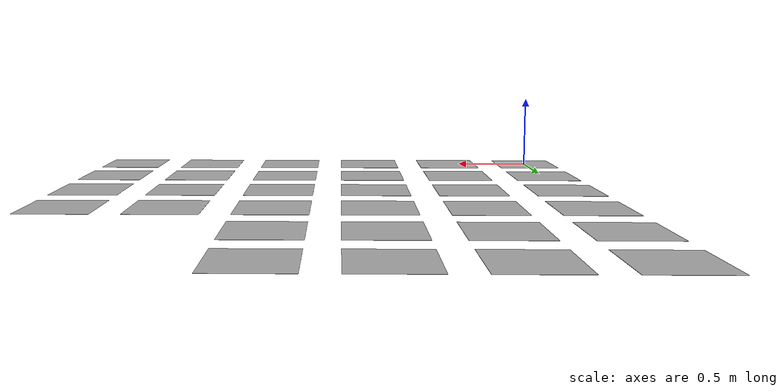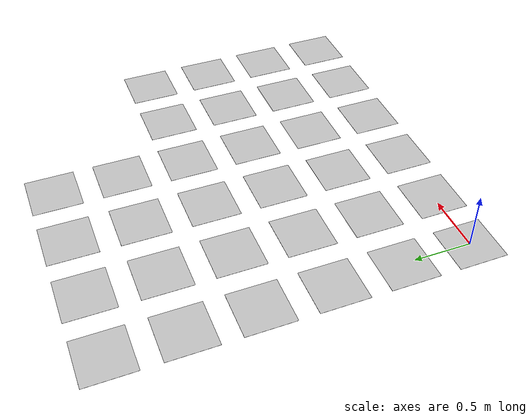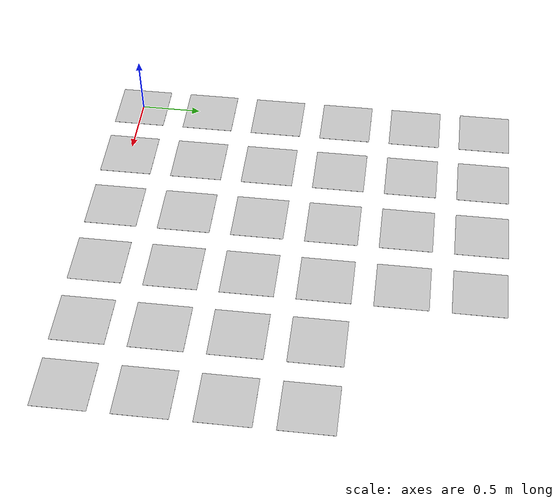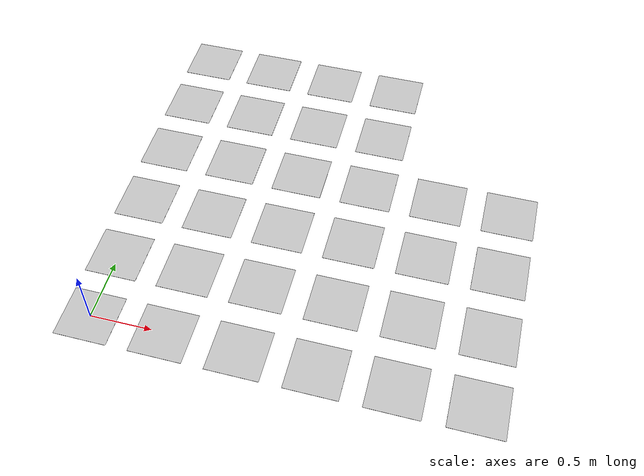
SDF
<?xml version="1.0"?>
<sdf version="1.5">
    <model name="aruco_2_32">
        <static>true</static>
        <link name="aruco_2_32_link">

<visual name="visual_marker_2_27">
    <pose>0.0 0.0 0.0 0.0 0.0 1.5707963267948966</pose>
    <cast_shadows>false</cast_shadows>
    <geometry>
        <box>
            <size>0.4266666666666667 0.4266666666666667 1e-3</size>
        </box>
    </geometry>
    <material>
        <script>
            <uri>model://aruco_ws_map_txt/materials/scripts</uri>
            <uri>model://aruco_ws_map_txt/materials/textures</uri>
            <name>aruco/marker_2_27</name>
        </script>
    </material>
</visual>

<visual name="visual_marker_2_28">
    <pose>0.6 0.0 0.0 0.0 0.0 1.5707963267948966</pose>
    <cast_shadows>false</cast_shadows>
    <geometry>
        <box>
            <size>0.4266666666666667 0.4266666666666667 1e-3</size>
        </box>
    </geometry>
    <material>
        <script>
            <uri>model://aruco_ws_map_txt/materials/scripts</uri>
            <uri>model://aruco_ws_map_txt/materials/textures</uri>
            <name>aruco/marker_2_28</name>
        </script>
    </material>
</visual>

<visual name="visual_marker_2_19">
    <pose>1.2 0.0 0.0 0.0 0.0 1.5707963267948966</pose>
    <cast_shadows>false</cast_shadows>
    <geometry>
        <box>
            <size>0.4266666666666667 0.4266666666666667 1e-3</size>
        </box>
    </geometry>
    <material>
        <script>
            <uri>model://aruco_ws_map_txt/materials/scripts</uri>
            <uri>model://aruco_ws_map_txt/materials/textures</uri>
            <name>aruco/marker_2_19</name>
        </script>
    </material>
</visual>

<visual name="visual_marker_2_20">
    <pose>1.7999999999999998 0.0 0.0 0.0 0.0 1.5707963267948966</pose>
    <cast_shadows>false</cast_shadows>
    <geometry>
        <box>
            <size>0.4266666666666667 0.4266666666666667 1e-3</size>
        </box>
    </geometry>
    <material>
        <script>
            <uri>model://aruco_ws_map_txt/materials/scripts</uri>
            <uri>model://aruco_ws_map_txt/materials/textures</uri>
            <name>aruco/marker_2_20</name>
        </script>
    </material>
</visual>

<visual name="visual_marker_2_25">
    <pose>2.4 0.0 0.0 0.0 0.0 1.5707963267948966</pose>
    <cast_shadows>false</cast_shadows>
    <geometry>
        <box>
            <size>0.4266666666666667 0.4266666666666667 1e-3</size>
        </box>
    </geometry>
    <material>
        <script>
            <uri>model://aruco_ws_map_txt/materials/scripts</uri>
            <uri>model://aruco_ws_map_txt/materials/textures</uri>
            <name>aruco/marker_2_25</name>
        </script>
    </material>
</visual>

<visual name="visual_marker_2_26">
    <pose>3.0 0.0 0.0 0.0 0.0 1.5707963267948966</pose>
    <cast_shadows>false</cast_shadows>
    <geometry>
        <box>
            <size>0.4266666666666667 0.4266666666666667 1e-3</size>
        </box>
    </geometry>
    <material>
        <script>
            <uri>model://aruco_ws_map_txt/materials/scripts</uri>
            <uri>model://aruco_ws_map_txt/materials/textures</uri>
            <name>aruco/marker_2_26</name>
        </script>
    </material>
</visual>

<visual name="visual_marker_2_31">
    <pose>0.0 0.6 0.0 0.0 0.0 1.5707963267948966</pose>
    <cast_shadows>false</cast_shadows>
    <geometry>
        <box>
            <size>0.4266666666666667 0.4266666666666667 1e-3</size>
        </box>
    </geometry>
    <material>
        <script>
            <uri>model://aruco_ws_map_txt/materials/scripts</uri>
            <uri>model://aruco_ws_map_txt/materials/textures</uri>
            <name>aruco/marker_2_31</name>
        </script>
    </material>
</visual>

<visual name="visual_marker_2_32">
    <pose>0.6 0.6 0.0 0.0 0.0 1.5707963267948966</pose>
    <cast_shadows>false</cast_shadows>
    <geometry>
        <box>
            <size>0.4266666666666667 0.4266666666666667 1e-3</size>
        </box>
    </geometry>
    <material>
        <script>
            <uri>model://aruco_ws_map_txt/materials/scripts</uri>
            <uri>model://aruco_ws_map_txt/materials/textures</uri>
            <name>aruco/marker_2_32</name>
        </script>
    </material>
</visual>

<visual name="visual_marker_2_23">
    <pose>1.2 0.6 0.0 0.0 0.0 1.5707963267948966</pose>
    <cast_shadows>false</cast_shadows>
    <geometry>
        <box>
            <size>0.4266666666666667 0.4266666666666667 1e-3</size>
        </box>
    </geometry>
    <material>
        <script>
            <uri>model://aruco_ws_map_txt/materials/scripts</uri>
            <uri>model://aruco_ws_map_txt/materials/textures</uri>
            <name>aruco/marker_2_23</name>
        </script>
    </material>
</visual>

<visual name="visual_marker_2_24">
    <pose>1.7999999999999998 0.6 0.0 0.0 0.0 1.5707963267948966</pose>
    <cast_shadows>false</cast_shadows>
    <geometry>
        <box>
            <size>0.4266666666666667 0.4266666666666667 1e-3</size>
        </box>
    </geometry>
    <material>
        <script>
            <uri>model://aruco_ws_map_txt/materials/scripts</uri>
            <uri>model://aruco_ws_map_txt/materials/textures</uri>
            <name>aruco/marker_2_24</name>
        </script>
    </material>
</visual>

<visual name="visual_marker_2_29">
    <pose>2.4 0.6 0.0 0.0 0.0 1.5707963267948966</pose>
    <cast_shadows>false</cast_shadows>
    <geometry>
        <box>
            <size>0.4266666666666667 0.4266666666666667 1e-3</size>
        </box>
    </geometry>
    <material>
        <script>
            <uri>model://aruco_ws_map_txt/materials/scripts</uri>
            <uri>model://aruco_ws_map_txt/materials/textures</uri>
            <name>aruco/marker_2_29</name>
        </script>
    </material>
</visual>

<visual name="visual_marker_2_30">
    <pose>3.0 0.6 0.0 0.0 0.0 1.5707963267948966</pose>
    <cast_shadows>false</cast_shadows>
    <geometry>
        <box>
            <size>0.4266666666666667 0.4266666666666667 1e-3</size>
        </box>
    </geometry>
    <material>
        <script>
            <uri>model://aruco_ws_map_txt/materials/scripts</uri>
            <uri>model://aruco_ws_map_txt/materials/textures</uri>
            <name>aruco/marker_2_30</name>
        </script>
    </material>
</visual>

<visual name="visual_marker_2_1">
    <pose>0.0 1.2 0.0 0.0 0.0 1.5707963267948966</pose>
    <cast_shadows>false</cast_shadows>
    <geometry>
        <box>
            <size>0.4266666666666667 0.4266666666666667 1e-3</size>
        </box>
    </geometry>
    <material>
        <script>
            <uri>model://aruco_ws_map_txt/materials/scripts</uri>
            <uri>model://aruco_ws_map_txt/materials/textures</uri>
            <name>aruco/marker_2_1</name>
        </script>
    </material>
</visual>

<visual name="visual_marker_2_2">
    <pose>0.6 1.2 0.0 0.0 0.0 1.5707963267948966</pose>
    <cast_shadows>false</cast_shadows>
    <geometry>
        <box>
            <size>0.4266666666666667 0.4266666666666667 1e-3</size>
        </box>
    </geometry>
    <material>
        <script>
            <uri>model://aruco_ws_map_txt/materials/scripts</uri>
            <uri>model://aruco_ws_map_txt/materials/textures</uri>
            <name>aruco/marker_2_2</name>
        </script>
    </material>
</visual>

<visual name="visual_marker_2_3">
    <pose>1.2 1.2 0.0 0.0 0.0 1.5707963267948966</pose>
    <cast_shadows>false</cast_shadows>
    <geometry>
        <box>
            <size>0.4266666666666667 0.4266666666666667 1e-3</size>
        </box>
    </geometry>
    <material>
        <script>
            <uri>model://aruco_ws_map_txt/materials/scripts</uri>
            <uri>model://aruco_ws_map_txt/materials/textures</uri>
            <name>aruco/marker_2_3</name>
        </script>
    </material>
</visual>

<visual name="visual_marker_2_4">
    <pose>1.7999999999999998 1.2 0.0 0.0 0.0 1.5707963267948966</pose>
    <cast_shadows>false</cast_shadows>
    <geometry>
        <box>
            <size>0.4266666666666667 0.4266666666666667 1e-3</size>
        </box>
    </geometry>
    <material>
        <script>
            <uri>model://aruco_ws_map_txt/materials/scripts</uri>
            <uri>model://aruco_ws_map_txt/materials/textures</uri>
            <name>aruco/marker_2_4</name>
        </script>
    </material>
</visual>

<visual name="visual_marker_2_17">
    <pose>2.4 1.2 0.0 0.0 0.0 1.5707963267948966</pose>
    <cast_shadows>false</cast_shadows>
    <geometry>
        <box>
            <size>0.4266666666666667 0.4266666666666667 1e-3</size>
        </box>
    </geometry>
    <material>
        <script>
            <uri>model://aruco_ws_map_txt/materials/scripts</uri>
            <uri>model://aruco_ws_map_txt/materials/textures</uri>
            <name>aruco/marker_2_17</name>
        </script>
    </material>
</visual>

<visual name="visual_marker_2_18">
    <pose>3.0 1.2 0.0 0.0 0.0 1.5707963267948966</pose>
    <cast_shadows>false</cast_shadows>
    <geometry>
        <box>
            <size>0.4266666666666667 0.4266666666666667 1e-3</size>
        </box>
    </geometry>
    <material>
        <script>
            <uri>model://aruco_ws_map_txt/materials/scripts</uri>
            <uri>model://aruco_ws_map_txt/materials/textures</uri>
            <name>aruco/marker_2_18</name>
        </script>
    </material>
</visual>

<visual name="visual_marker_2_5">
    <pose>0.0 1.7999999999999998 0.0 0.0 0.0 1.5707963267948966</pose>
    <cast_shadows>false</cast_shadows>
    <geometry>
        <box>
            <size>0.4266666666666667 0.4266666666666667 1e-3</size>
        </box>
    </geometry>
    <material>
        <script>
            <uri>model://aruco_ws_map_txt/materials/scripts</uri>
            <uri>model://aruco_ws_map_txt/materials/textures</uri>
            <name>aruco/marker_2_5</name>
        </script>
    </material>
</visual>

<visual name="visual_marker_2_6">
    <pose>0.6 1.7999999999999998 0.0 0.0 0.0 1.5707963267948966</pose>
    <cast_shadows>false</cast_shadows>
    <geometry>
        <box>
            <size>0.4266666666666667 0.4266666666666667 1e-3</size>
        </box>
    </geometry>
    <material>
        <script>
            <uri>model://aruco_ws_map_txt/materials/scripts</uri>
            <uri>model://aruco_ws_map_txt/materials/textures</uri>
            <name>aruco/marker_2_6</name>
        </script>
    </material>
</visual>

<visual name="visual_marker_2_7">
    <pose>1.2 1.7999999999999998 0.0 0.0 0.0 1.5707963267948966</pose>
    <cast_shadows>false</cast_shadows>
    <geometry>
        <box>
            <size>0.4266666666666667 0.4266666666666667 1e-3</size>
        </box>
    </geometry>
    <material>
        <script>
            <uri>model://aruco_ws_map_txt/materials/scripts</uri>
            <uri>model://aruco_ws_map_txt/materials/textures</uri>
            <name>aruco/marker_2_7</name>
        </script>
    </material>
</visual>

<visual name="visual_marker_2_8">
    <pose>1.7999999999999998 1.7999999999999998 0.0 0.0 0.0 1.5707963267948966</pose>
    <cast_shadows>false</cast_shadows>
    <geometry>
        <box>
            <size>0.4266666666666667 0.4266666666666667 1e-3</size>
        </box>
    </geometry>
    <material>
        <script>
            <uri>model://aruco_ws_map_txt/materials/scripts</uri>
            <uri>model://aruco_ws_map_txt/materials/textures</uri>
            <name>aruco/marker_2_8</name>
        </script>
    </material>
</visual>

<visual name="visual_marker_2_21">
    <pose>2.4 1.7999999999999998 0.0 0.0 0.0 1.5707963267948966</pose>
    <cast_shadows>false</cast_shadows>
    <geometry>
        <box>
            <size>0.4266666666666667 0.4266666666666667 1e-3</size>
        </box>
    </geometry>
    <material>
        <script>
            <uri>model://aruco_ws_map_txt/materials/scripts</uri>
            <uri>model://aruco_ws_map_txt/materials/textures</uri>
            <name>aruco/marker_2_21</name>
        </script>
    </material>
</visual>

<visual name="visual_marker_2_22">
    <pose>3.0 1.7999999999999998 0.0 0.0 0.0 1.5707963267948966</pose>
    <cast_shadows>false</cast_shadows>
    <geometry>
        <box>
            <size>0.4266666666666667 0.4266666666666667 1e-3</size>
        </box>
    </geometry>
    <material>
        <script>
            <uri>model://aruco_ws_map_txt/materials/scripts</uri>
            <uri>model://aruco_ws_map_txt/materials/textures</uri>
            <name>aruco/marker_2_22</name>
        </script>
    </material>
</visual>

<visual name="visual_marker_2_9">
    <pose>0.0 2.4 0.0 0.0 0.0 1.5707963267948966</pose>
    <cast_shadows>false</cast_shadows>
    <geometry>
        <box>
            <size>0.4266666666666667 0.4266666666666667 1e-3</size>
        </box>
    </geometry>
    <material>
        <script>
            <uri>model://aruco_ws_map_txt/materials/scripts</uri>
            <uri>model://aruco_ws_map_txt/materials/textures</uri>
            <name>aruco/marker_2_9</name>
        </script>
    </material>
</visual>

<visual name="visual_marker_2_10">
    <pose>0.6 2.4 0.0 0.0 0.0 1.5707963267948966</pose>
    <cast_shadows>false</cast_shadows>
    <geometry>
        <box>
            <size>0.4266666666666667 0.4266666666666667 1e-3</size>
        </box>
    </geometry>
    <material>
        <script>
            <uri>model://aruco_ws_map_txt/materials/scripts</uri>
            <uri>model://aruco_ws_map_txt/materials/textures</uri>
            <name>aruco/marker_2_10</name>
        </script>
    </material>
</visual>

<visual name="visual_marker_2_11">
    <pose>1.2 2.4 0.0 0.0 0.0 1.5707963267948966</pose>
    <cast_shadows>false</cast_shadows>
    <geometry>
        <box>
            <size>0.4266666666666667 0.4266666666666667 1e-3</size>
        </box>
    </geometry>
    <material>
        <script>
            <uri>model://aruco_ws_map_txt/materials/scripts</uri>
            <uri>model://aruco_ws_map_txt/materials/textures</uri>
            <name>aruco/marker_2_11</name>
        </script>
    </material>
</visual>

<visual name="visual_marker_2_12">
    <pose>1.7999999999999998 2.4 0.0 0.0 0.0 1.5707963267948966</pose>
    <cast_shadows>false</cast_shadows>
    <geometry>
        <box>
            <size>0.4266666666666667 0.4266666666666667 1e-3</size>
        </box>
    </geometry>
    <material>
        <script>
            <uri>model://aruco_ws_map_txt/materials/scripts</uri>
            <uri>model://aruco_ws_map_txt/materials/textures</uri>
            <name>aruco/marker_2_12</name>
        </script>
    </material>
</visual>

<visual name="visual_marker_2_13">
    <pose>0.0 3.0 0.0 0.0 0.0 1.5707963267948966</pose>
    <cast_shadows>false</cast_shadows>
    <geometry>
        <box>
            <size>0.4266666666666667 0.4266666666666667 1e-3</size>
        </box>
    </geometry>
    <material>
        <script>
            <uri>model://aruco_ws_map_txt/materials/scripts</uri>
            <uri>model://aruco_ws_map_txt/materials/textures</uri>
            <name>aruco/marker_2_13</name>
        </script>
    </material>
</visual>

<visual name="visual_marker_2_14">
    <pose>0.6 3.0 0.0 0.0 0.0 1.5707963267948966</pose>
    <cast_shadows>false</cast_shadows>
    <geometry>
        <box>
            <size>0.4266666666666667 0.4266666666666667 1e-3</size>
        </box>
    </geometry>
    <material>
        <script>
            <uri>model://aruco_ws_map_txt/materials/scripts</uri>
            <uri>model://aruco_ws_map_txt/materials/textures</uri>
            <name>aruco/marker_2_14</name>
        </script>
    </material>
</visual>

<visual name="visual_marker_2_15">
    <pose>1.2 3.0 0.0 0.0 0.0 1.5707963267948966</pose>
    <cast_shadows>false</cast_shadows>
    <geometry>
        <box>
            <size>0.4266666666666667 0.4266666666666667 1e-3</size>
        </box>
    </geometry>
    <material>
        <script>
            <uri>model://aruco_ws_map_txt/materials/scripts</uri>
            <uri>model://aruco_ws_map_txt/materials/textures</uri>
            <name>aruco/marker_2_15</name>
        </script>
    </material>
</visual>

<visual name="visual_marker_2_16">
    <pose>1.7999999999999998 3.0 0.0 0.0 0.0 1.5707963267948966</pose>
    <cast_shadows>false</cast_shadows>
    <geometry>
        <box>
            <size>0.4266666666666667 0.4266666666666667 1e-3</size>
        </box>
    </geometry>
    <material>
        <script>
            <uri>model://aruco_ws_map_txt/materials/scripts</uri>
            <uri>model://aruco_ws_map_txt/materials/textures</uri>
            <name>aruco/marker_2_16</name>
        </script>
    </material>
</visual>

        </link>
    </model>
</sdf>
